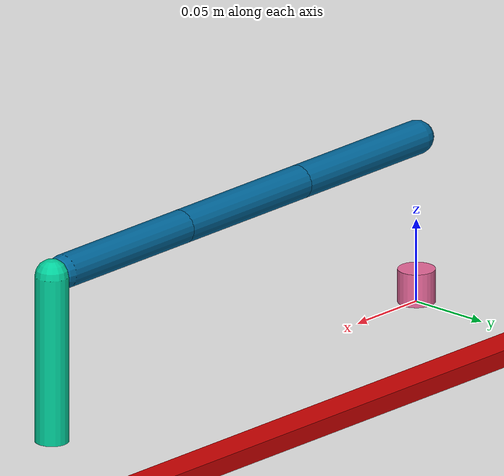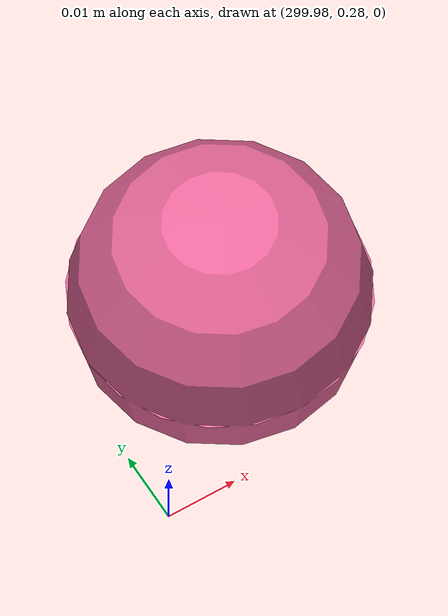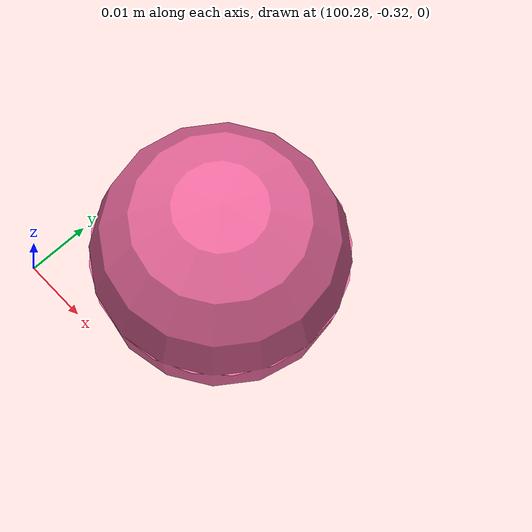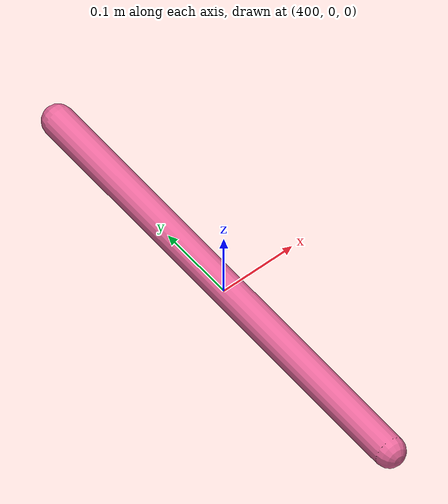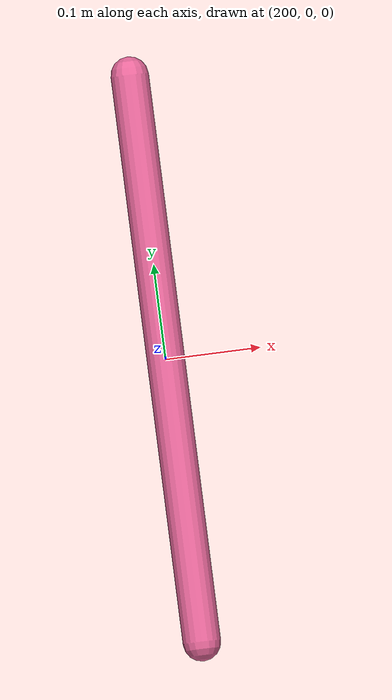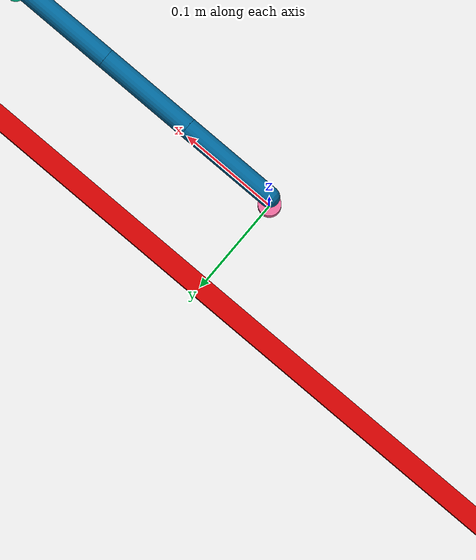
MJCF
<mujoco model="reacher">
	<compiler angle="radian" inertiafromgeom="true"/>
	<default>
		<joint armature="1" damping="1" limited="true"/>
		<geom contype="0" friction="1 0.1 0.1" rgba="0.7 0.7 0 1"/>
	</default>
	<option gravity="0 0 -9.81" integrator="RK4" timestep="0.01"/>
	<worldbody>
		<!-- Arena -->
		<geom conaffinity="1" contype="1" name="ground" pos="0 0 0" rgba="0.9 0.9 0.9 1" size="1 1 10" type="plane"/>
		<geom conaffinity="0" fromto="100.3 -.3 .01 100.3 -.3 .01" name="sideS" rgba="0.9 0.4 0.6 1" size=".02" type="capsule"/>
		<geom conaffinity="0" fromto=" 200 -.3 .01 200 .3 .01" name="sideE" rgba="0.9 0.4 0.6 1" size=".02" type="capsule"/>
		<geom conaffinity="0" fromto="300 .3 .01 300 .3 .01" name="sideN" rgba="0.9 0.4 0.6 1" size=".02" type="capsule"/>
		<geom conaffinity="0" fromto="400 -.3 .01  400 .3 .01" name="sideW" rgba="0.9 0.4 0.6 1" size=".02" type="capsule"/>
		<!-- Arm -->
		<geom conaffinity="0" contype="0" fromto="0 0 0 0 0 0.02" name="root" rgba="0.9 0.4 0.6 1" size=".011" type="cylinder"/>
		<body name="body0" pos="0 0 .1">
			<geom fromto="0 0 0 0.1 0 0" name="link0" rgba="0.0 0.4 0.6 1" size=".01" type="capsule"/>
			<joint axis="0 0 1" limited="false" name="joint0" pos="0 0 0" type="hinge"/>
			<body name="body1" pos="0.1 0 0">
				<joint axis="0 0 1" limited="true" name="joint1" pos="0 0 0" range="-3.0 3.0" type="hinge"/>
				<geom fromto="0 0 0 0.1 0 0" name="link1" rgba="0.0 0.4 0.6 1" size=".01" type="capsule"/>
					<body name="body2" pos="0.1 0 0">
						<joint axis="0 0 1" limited="true" name="joint2" pos="0 0 0" range="-3.0 3.0" type="hinge"/>
						<geom fromto="0 0 0 0.1 0 0" name="link2" rgba="0.0 0.4 0.6 1" size=".01" type="capsule"/>
						<body name="fingertip" pos="0.11 0 0">
							<geom fromto="0 0 0 0 0 -0.9" contype="1" name="fingertip" pos="0 0 0" rgba="0.0 0.8 0.6 1" size=".01" type="capsule"/>
						</body>
					</body>
			</body>
		</body>
		<!-- Target -->
		<body name="target" pos="0 0 .01">
			<joint armature="0" axis="1 0 0" damping="0" limited="true" name="target_x" pos="0 0 0" range="-.27 .27" stiffness="0" type="slide"/>
			<joint armature="0" axis="0 1 0" damping="0" limited="true" name="target_y" pos="0 0 0" range="-.27 .27" stiffness="0" type="slide"/>
			<geom conaffinity="0" contype="0" name="target" pos="0 0 0" rgba="0.9 0.2 0.2 1" size=".009" type="sphere"/>
		</body>
		<body name="wall" pos="0.0 0.1 0.0">
   			<inertial mass="0"/>

   			<geom contype="1" friction="0.5 0.5 0.5" type="box" rgba="0.8 0.0 0.0 1" size="0.8 0.01 0.01"/>
		</body>
	</worldbody>
</mujoco>
